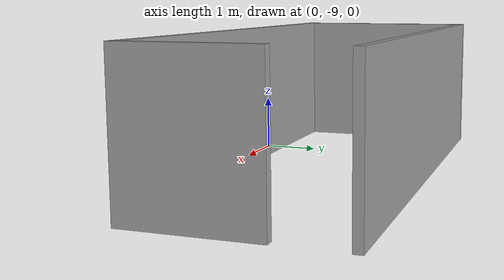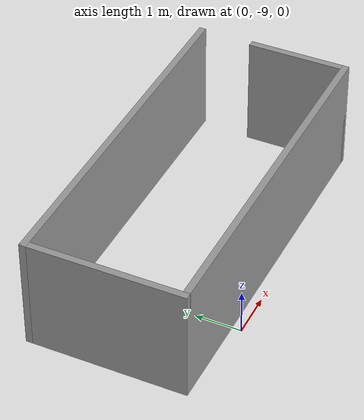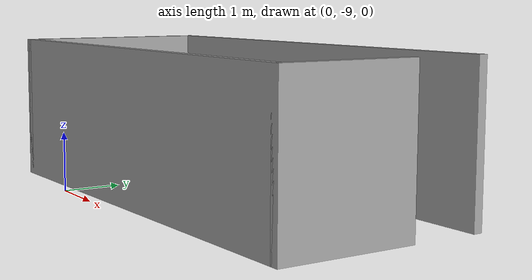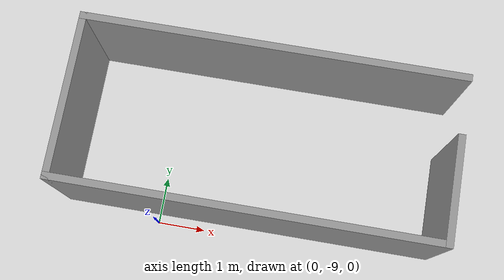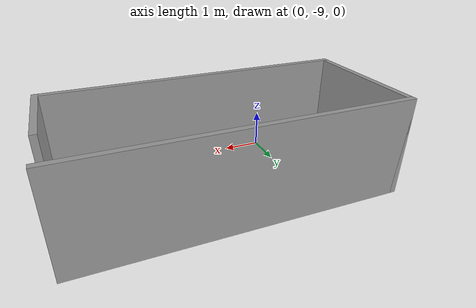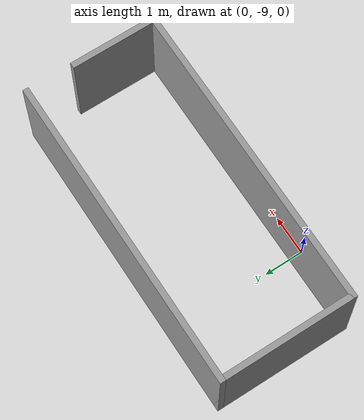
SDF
<?xml version='1.0'?>
<sdf version='1.6'>
  <model name='Untitled2'>
    <pose frame=''>1.935 -7.055 0 0 -0 0</pose>
    <link name='Wall_10'>
      <collision name='Wall_10_Collision'>
        <geometry>
          <box>
            <size>2.25 0.15 2.5</size>
          </box>
        </geometry>
        <pose frame=''>0 0 1.25 0 -0 0</pose>
      </collision>
      <visual name='Wall_10_Visual'>
        <pose frame=''>0 0 1.25 0 -0 0</pose>
        <geometry>
          <box>
            <size>2.25 0.15 2.5</size>
          </box>
        </geometry>
        <material>
          <script>
            <uri>file://media/materials/scripts/gazebo.material</uri>
            <name>Gazebo/Grey</name>
          </script>
          <ambient>1 1 1 1</ambient>
        </material>
        <meta>
          <layer>0</layer>
        </meta>
      </visual>
      <pose frame=''>3.925 -0.625 0 0 -0 1.5708</pose>
    </link>
    <link name='Wall_12'>
      <collision name='Wall_12_Collision'>
        <geometry>
          <box>
            <size>8 0.15 2.5</size>
          </box>
        </geometry>
        <pose frame=''>0 0 1.25 0 -0 0</pose>
      </collision>
      <visual name='Wall_12_Visual'>
        <pose frame=''>0 0 1.25 0 -0 0</pose>
        <geometry>
          <box>
            <size>8 0.15 2.5</size>
          </box>
        </geometry>
        <material>
          <script>
            <uri>file://media/materials/scripts/gazebo.material</uri>
            <name>Gazebo/Grey</name>
          </script>
          <ambient>1 1 1 1</ambient>
        </material>
        <meta>
          <layer>0</layer>
        </meta>
      </visual>
      <pose frame=''>-0 1.675 0 0 -0 0</pose>
    </link>
    <link name='Wall_8'>
      <collision name='Wall_8_Collision'>
        <geometry>
          <box>
            <size>3.5 0.15 2.5</size>
          </box>
        </geometry>
        <pose frame=''>0 0 1.25 0 -0 0</pose>
      </collision>
      <visual name='Wall_8_Visual'>
        <pose frame=''>0 0 1.25 0 -0 0</pose>
        <geometry>
          <box>
            <size>3.5 0.15 2.5</size>
          </box>
        </geometry>
        <material>
          <script>
            <uri>file://media/materials/scripts/gazebo.material</uri>
            <name>Gazebo/Grey</name>
          </script>
          <ambient>1 1 1 1</ambient>
        </material>
        <meta>
          <layer>0</layer>
        </meta>
      </visual>
      <pose frame=''>-3.925 0 0 0 -0 -1.5708</pose>
    </link>
    <link name='Wall_9'>
      <collision name='Wall_9_Collision'>
        <geometry>
          <box>
            <size>8 0.15 2.5</size>
          </box>
        </geometry>
        <pose frame=''>0 0 1.25 0 -0 0</pose>
      </collision>
      <visual name='Wall_9_Visual'>
        <pose frame=''>0 0 1.25 0 -0 0</pose>
        <geometry>
          <box>
            <size>8 0.15 2.5</size>
          </box>
        </geometry>
        <material>
          <script>
            <uri>file://media/materials/scripts/gazebo.material</uri>
            <name>Gazebo/Grey</name>
          </script>
          <ambient>1 1 1 1</ambient>
        </material>
        <meta>
          <layer>0</layer>
        </meta>
      </visual>
      <pose frame=''>-0 -1.675 0 0 -0 0</pose>
    </link>
    <static>1</static>
  </model>
</sdf>
